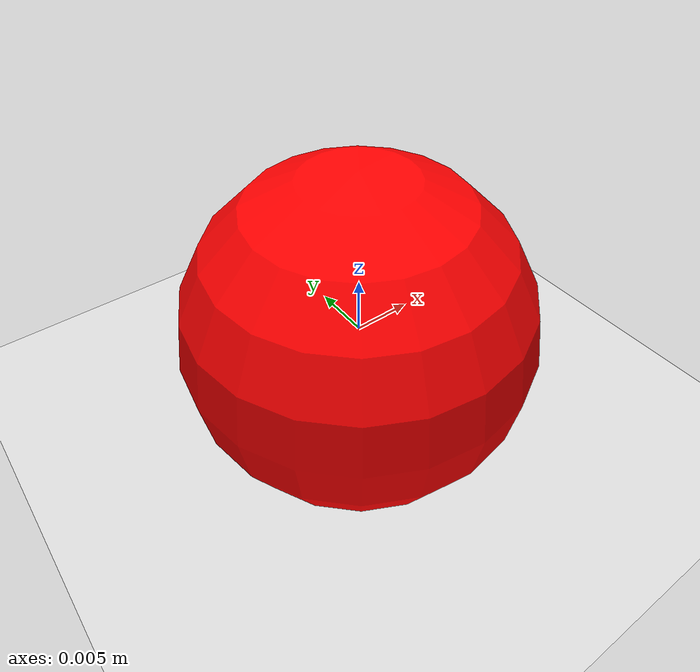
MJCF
<mujoco model="anchored_figures">
    <option timestep="0.01" gravity="0 0 0"/>

    <!-- Materiali -->
    <asset>
        <material name="green_material" rgba="0.0 1.0 0.0 1.0"/>
        <material name="white_material" rgba="1.0 1.0 1.0 1.0"/>
        <material name="red_material" rgba="1.0 0.0 0.0 1.0"/> <!-- Materiale rosso -->
    </asset>

    <!-- Corpo del mondo -->
    <worldbody>
        <!-- Piano bianco sul piano XY -->
        <geom type="plane" size="3 3 0.01" pos="0.0 0.0 -0.01" material="white_material" friction="0 0 0"/>

        <!-- Corpo principale (centro di massa) -->
        <body name="agent" pos="0 0 0" mocap="false">
            <inertial pos="0 0 0" mass="1.0" diaginertia="0.01 0.01 0.01"/>

            <!-- Joint per movimento sul piano XY -->
            <joint name="agent_slide_x" type="slide" axis="1 0 0" limited="false"/>
            <joint name="agent_slide_y" type="slide" axis="0 1 0" limited="false"/>
            <joint name="agent_rotation_z" type="hinge" axis="0 0 1" limited="false"/>

        </body>

        <!-- Corpo principale (centro di massa) -->
        <body name="target" pos="0 0 0" mocap="false">
            <inertial pos="0 0 0" mass="1.0" diaginertia="0.01 0.01 0.01"/>

            <!-- Joint per movimento sul piano XY -->
            <joint name="target_slide_x" type="slide" axis="1 0 0" limited="false"/>
            <joint name="target_slide_y" type="slide" axis="0 1 0" limited="false"/>
            <joint name="rotation_target_z" type="hinge" axis="0 0 1" limited="false"/>

            <!-- Rappresentazione del centro di massa -->
            <geom type="sphere" size="0.015" pos="0 0 0" material="red_material" friction="0 0 0"/>

        </body>

        <camera name="top_view" pos="0 0 1" xyaxes="1 0 0 0 1 0"/>

    </worldbody>

    <!-- Attuatori -->
    <actuator>
        <!-- Attuatore per movimento lungo X -->
        <motor name="act_slide_x" joint="agent_slide_x" ctrllimited="false" gear="1"/>
        <!-- Attuatore per movimento lungo Y -->
        <motor name="act_slide_y" joint="agent_slide_y" ctrllimited="false" gear="1"/>
        <!-- Attuatore per rotazione attorno a Z -->
        <motor name="act_rotation_z" joint="agent_rotation_z" ctrllimited="false"/>

        <!-- Attuatore per movimento lungo X -->
        <motor name="act_slide_target_x" joint="target_slide_x" ctrllimited="false" gear="1"/>
        <!-- Attuatore per movimento lungo Y -->
        <motor name="act_slide_target_y" joint="target_slide_y" ctrllimited="false" gear="1"/>
        <!-- Attuatore per rotazione attorno a Z -->
        <motor name="act_rotation_target_z" joint="rotation_target_z" ctrllimited="false"/>
    </actuator>

    <!-- Configurazione visiva -->
    <visual>
        <global/>
        <map stiffness="1e-3"/>
        <quality shadowsize="2048"/>
    </visual>
</mujoco>
